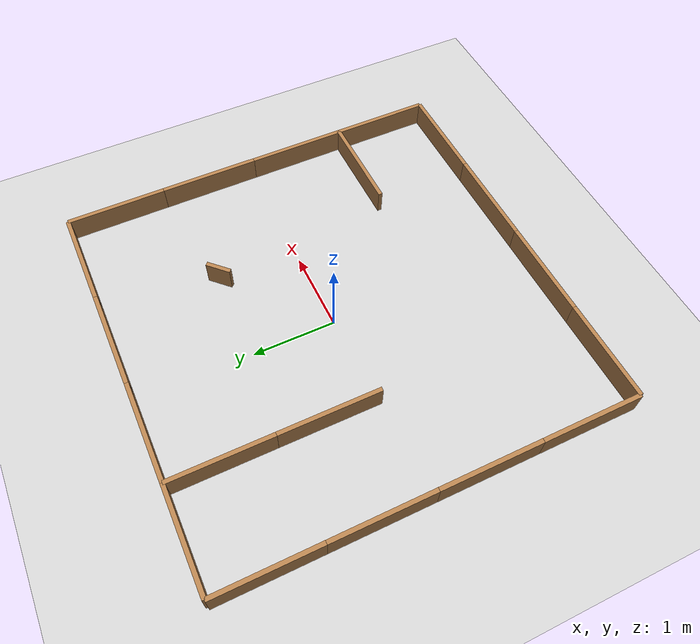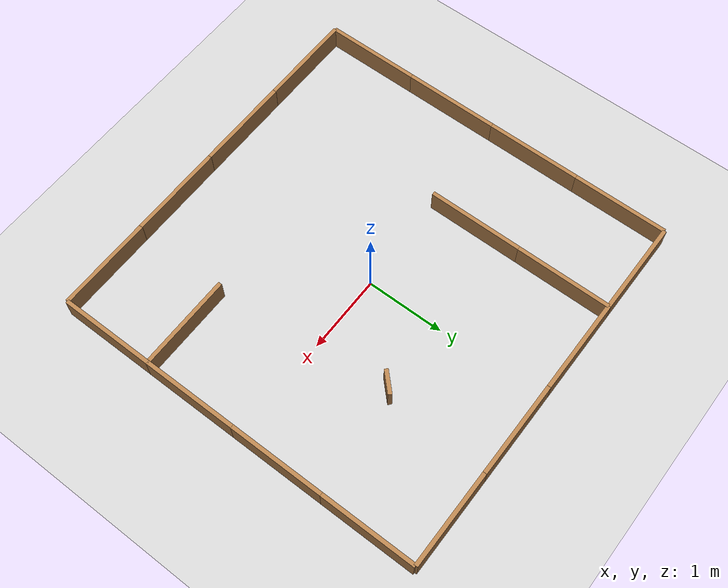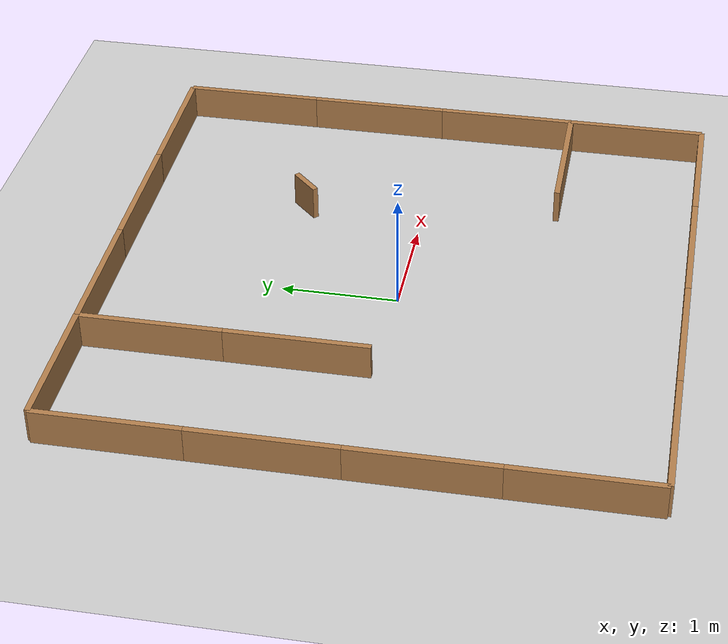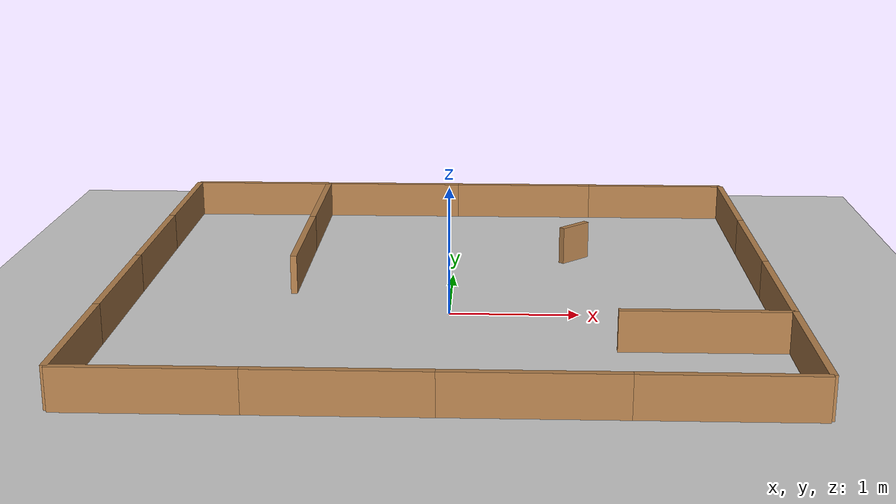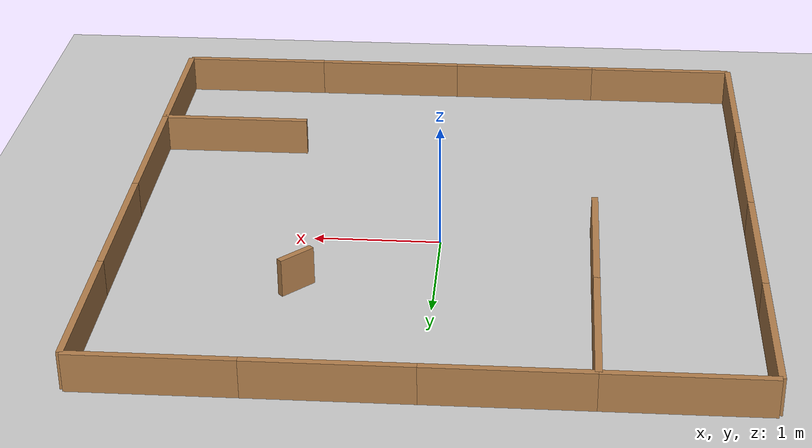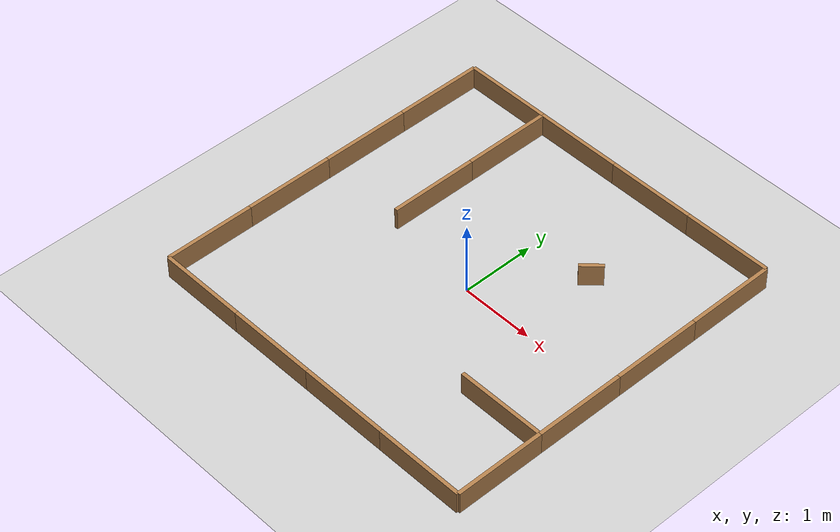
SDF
<?xml version="1.0" ?>
<sdf version="1.8">
  <world name="group3_custom">

    <physics name="default_physics" type="ode">
        <max_step_size>0.005</max_step_size>
        <real_time_factor>1.0</real_time_factor>
        <real_time_update_rate>200</real_time_update_rate>
    </physics>

    <!-- Core Ignition systems (Fortress / Gazebo6) -->
    <plugin filename="libignition-gazebo6-physics-system.so"
            name="ignition::gazebo::systems::Physics"/>

    <plugin filename="libignition-gazebo6-user-commands-system.so"
            name="ignition::gazebo::systems::UserCommands"/>

    <plugin filename="libignition-gazebo6-scene-broadcaster-system.so"
            name="ignition::gazebo::systems::SceneBroadcaster"/>

    <plugin filename="libignition-gazebo6-sensors-system.so"
            name="ignition::gazebo::systems::Sensors"/>

    <!-- Scene configuration -->
    <scene>
      <ambient>0.6 0.6 0.6 1</ambient>
      <background>0.8 0.8 0.8 1</background>
      <shadows>false</shadows>
      <grid>true</grid>
    </scene>

    <!-- Sun light -->
    <light type="directional" name="sun">
      <cast_shadows>false</cast_shadows>
      <pose>0 0 10 0 0 0</pose>
      <diffuse>0.8 0.8 0.8 1</diffuse>
      <specular>0.2 0.2 0.2 1</specular>
      <direction>-0.5 0.1 -0.9</direction>
    </light>

    <!-- Ground plane -->
    <model name="ground_plane">
      <static>true</static>
      <link name="link">
        <collision name="collision">
          <geometry>
            <plane>
              <normal>0 0 1</normal>
              <size>20 20</size>
            </plane>
          </geometry>
        </collision>

        <visual name="visual">
          <geometry>
            <plane>
              <normal>0 0 1</normal>
              <size>20 20</size>
            </plane>
          </geometry>
          <material>
            <ambient>0.8 0.8 0.8 1</ambient>
            <diffuse>0.8 0.8 0.8 1</diffuse>
            <specular>0.1 0.1 0.1 1</specular>
          </material>
        </visual>
      </link>
    </model>

    <!-- Gazebo Fortress GUI -->
    <gui fullscreen="0">
      <plugin filename="MinimalScene" name="3D View">
        <gz-gui>
          <title>3D View</title>
          <property type="bool" key="showTitleBar">false</property>
          <property type="string" key="state">docked</property>
        </gz-gui>
        <engine>ogre2</engine>
        <scene>scene</scene>
        <camera_pose>0 0 2.5 0 1.5708 0</camera_pose>
      </plugin>

      <plugin filename="GzSceneManager" name="Scene Manager">
        <gz-gui>
          <property key="resizable" type="bool">false</property>
          <property key="width" type="double">1</property>
          <property key="height" type="double">1</property>
          <property key="state" type="string">floating</property>
          <property key="showTitleBar" type="bool">false</property>
        </gz-gui>
      </plugin>

      <plugin filename="InteractiveViewControl" name="Interactive view control">
        <gz-gui>
          <property key="resizable" type="bool">false</property>
          <property key="width" type="double">1</property>
          <property key="height" type="double">1</property>
          <property key="state" type="string">floating</property>
          <property key="showTitleBar" type="bool">false</property>
        </gz-gui>
      </plugin>

      <plugin filename="EntityContextMenuPlugin" name="Entity context menu">
        <gz-gui>
          <property key="resizable" type="bool">false</property>
          <property key="width" type="double">1</property>
          <property key="height" type="double">1</property>
          <property key="state" type="string">floating</property>
          <property key="showTitleBar" type="bool">false</property>
        </gz-gui>
      </plugin>

      <plugin filename="CameraTracking" name="Camera Tracking">
        <gz-gui>
          <property key="width" type="double">1</property>
          <property key="height" type="double">1</property>
          <property key="state" type="string">floating</property>
          <property key="showTitleBar" type="bool">false</property>
        </gz-gui>
      </plugin>

      <plugin filename="ComponentInspector" name="Component inspector"/>
      <plugin filename="EntityTree" name="Entity tree"/>
    </gui>

    <!-- ===== OUTER BOUNDARY: 4.8 m x 4.8 m, built from wall120cm ===== -->
    <include>
      <uri>model://wall120cm</uri>
      <name>wall_north_1</name>
      <pose>-1.8 2.4 0.15 0 0 0.0</pose>
    </include>
    <include>
      <uri>model://wall120cm</uri>
      <name>wall_south_1</name>
      <pose>-1.8 -2.4 0.15 0 0 0.0</pose>
    </include>
    <include>
      <uri>model://wall120cm</uri>
      <name>wall_east_1</name>
      <pose>2.4 -1.8 0.15 0 0 1.5708</pose>
    </include>
    <include>
      <uri>model://wall120cm</uri>
      <name>wall_west_1</name>
      <pose>-2.4 -1.8 0.15 0 0 1.5708</pose>
    </include>
    <include>
      <uri>model://wall120cm</uri>
      <name>wall_north_2</name>
      <pose>-0.6 2.4 0.15 0 0 0.0</pose>
    </include>
    <include>
      <uri>model://wall120cm</uri>
      <name>wall_south_2</name>
      <pose>-0.6 -2.4 0.15 0 0 0.0</pose>
    </include>
    <include>
      <uri>model://wall120cm</uri>
      <name>wall_east_2</name>
      <pose>2.4 -0.6 0.15 0 0 1.5708</pose>
    </include>
    <include>
      <uri>model://wall120cm</uri>
      <name>wall_west_2</name>
      <pose>-2.4 -0.6 0.15 0 0 1.5708</pose>
    </include>
    <include>
      <uri>model://wall120cm</uri>
      <name>wall_north_3</name>
      <pose>0.6 2.4 0.15 0 0 0.0</pose>
    </include>
    <include>
      <uri>model://wall120cm</uri>
      <name>wall_south_3</name>
      <pose>0.6 -2.4 0.15 0 0 0.0</pose>
    </include>
    <include>
      <uri>model://wall120cm</uri>
      <name>wall_east_3</name>
      <pose>2.4 0.6 0.15 0 0 1.5708</pose>
    </include>
    <include>
      <uri>model://wall120cm</uri>
      <name>wall_west_3</name>
      <pose>-2.4 0.6 0.15 0 0 1.5708</pose>
    </include>
    <include>
      <uri>model://wall120cm</uri>
      <name>wall_north_4</name>
      <pose>1.8 2.4 0.15 0 0 0.0</pose>
    </include>
    <include>
      <uri>model://wall120cm</uri>
      <name>wall_south_4</name>
      <pose>1.8 -2.4 0.15 0 0 0.0</pose>
    </include>
    <include>
      <uri>model://wall120cm</uri>
      <name>wall_east_4</name>
      <pose>2.4 1.8 0.15 0 0 1.5708</pose>
    </include>
    <include>
      <uri>model://wall120cm</uri>
      <name>wall_west_4</name>
      <pose>-2.4 1.8 0.15 0 0 1.5708</pose>
    </include>

    <!-- ===== INTERNAL WALL A: vertical, x=-1.2, from y=0 to y=2.4 (creates NW pocket) ===== -->
    <include>
      <uri>model://wall120cm</uri>
      <name>inner_wall_A1</name>
      <pose>-1.2 0.6 0.15 0 0 1.5708</pose>
    </include>
    <include>
      <uri>model://wall120cm</uri>
      <name>inner_wall_A2</name>
      <pose>-1.2 1.8 0.15 0 0 1.5708</pose>
    </include>

    <!-- ===== INTERNAL WALL B: horizontal, y=-1.2, from x=1.2 to x=2.4 (creates SE bay) ===== -->
    <include>
      <uri>model://wall120cm</uri>
      <name>inner_wall_B1</name>
      <pose>1.8 -1.2 0.15 0 0 0.0</pose>
    </include>

    <!-- ===== FREE-STANDING OBSTACLE in the NE area ===== -->
    <include>
      <uri>model://wall30cm</uri>
      <name>obstacle_1</name>
      <pose>1.0 1.0 0.15 0 0 0.7854</pose>
    </include>

  </world>
</sdf>

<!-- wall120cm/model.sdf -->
<sdf version='1.7'>
  <model name='wall120cm'>
    <pose>0 0 0 0 0 0</pose>
    <link name='Wall_11'>
      <collision name='Wall_11_Collision'>
        <geometry>
          <box>
            <size>1.2 0.05 0.3</size>
          </box>
        </geometry>
        <pose>0 0 0.15 0 -0 0</pose>
      </collision>
      <visual name='Wall_11_Visual'>
        <pose>0 0 0.15 0 -0 0</pose>
        <geometry>
          <box>
            <size>1.2 0.05 0.3</size>
          </box>
        </geometry>
        <material>
          <script>
            <uri>file://media/materials/scripts/gazebo.material</uri>
            <name>Gazebo/Wood</name>
          </script>
          <ambient>1 1 1 1</ambient>
        </material>
        <meta>
          <layer>0</layer>
        </meta>
      </visual>
      <pose>0 0 0 0 0 0</pose>
    </link>
    <static>1</static>
  </model>
</sdf>

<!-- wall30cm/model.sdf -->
<sdf version='1.7'>
  <model name='wall30cm'>
    <pose>0 0 0 0 0 0</pose>
    <link name='Wall_0'>
      <collision name='Wall_0_Collision'>
        <geometry>
          <box>
            <size>0.3 0.05 0.3</size>
          </box>
        </geometry>
        <pose>0 0 0.15 0 -0 0</pose>
      </collision>
      <visual name='Wall_0_Visual'>
        <pose>0 0 0.15 0 -0 0</pose>
        <geometry>
          <box>
            <size>0.3 0.05 0.3</size>
          </box>
        </geometry>
        <material>
          <script>
            <uri>file://media/materials/scripts/gazebo.material</uri>
            <name>Gazebo/Wood</name>
          </script>
          <ambient>1 1 1 1</ambient>
        </material>
        <meta>
          <layer>0</layer>
        </meta>
      </visual>
      <pose>-0 0 0 0 -0 0</pose>
    </link>
    <static>1</static>
  </model>
</sdf>
